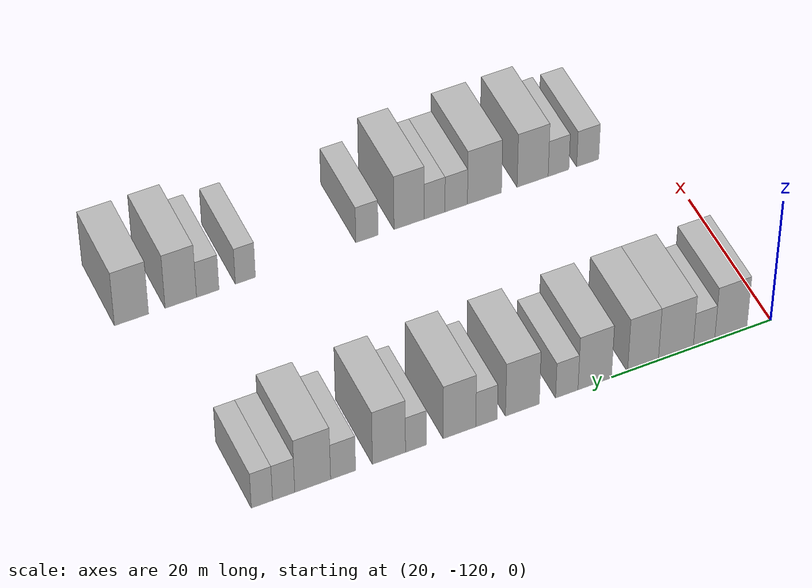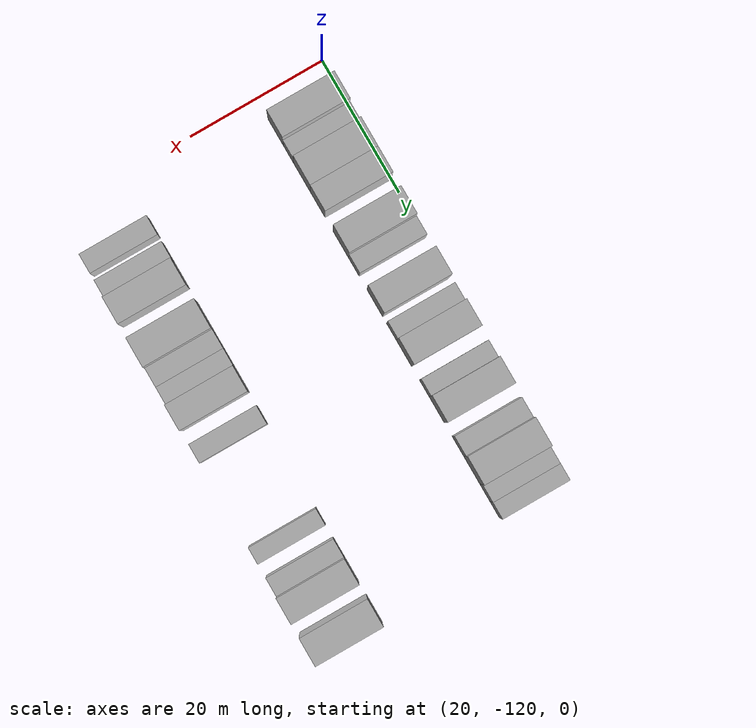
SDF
<sdf version="1.6">
 <world name="default">
  <model name="building_29">
   <static>1</static>
   <pose>25.0000 -114.8955 0 0.000000 0.000000 0.000000</pose>
   <link name="link">
    <pose>0 0 4.50 0 0 0</pose>
    <collision name="collision"><geometry><box><size>10.0000 4.0526 9.0000</size></box></geometry></collision>
    <visual name="visual">
     <cast_shadows>0</cast_shadows>
     <geometry><box><size>10.0000 4.0526 9.0000</size></box></geometry>
     <material>
      <script>
       <uri>model://HANNAS_wall/materials/scripts</uri>
       <uri>model://HANNAS_wall/materials/textures</uri>
       <name>vrc/HANNAS_wall</name>
      </script>
     </material>
    </visual>
   </link>
  </model>
  <model name="building_30">
   <static>1</static>
   <pose>25.0000 -111.5190 0 0.000000 0.000000 0.000000</pose>
   <link name="link">
    <pose>0 0 3.00 0 0 0</pose>
    <collision name="collision"><geometry><box><size>10.0000 2.7004 6.0000</size></box></geometry></collision>
    <visual name="visual">
     <cast_shadows>0</cast_shadows>
     <geometry><box><size>10.0000 2.7004 6.0000</size></box></geometry>
     <material>
      <script>
       <uri>model://HANNAS_wall/materials/scripts</uri>
       <uri>model://HANNAS_wall/materials/textures</uri>
       <name>vrc/HANNAS_wall</name>
      </script>
     </material>
    </visual>
   </link>
  </model>
  <model name="building_31">
   <static>1</static>
   <pose>25.0000 -107.9925 0 0.000000 0.000000 0.000000</pose>
   <link name="link">
    <pose>0 0 4.50 0 0 0</pose>
    <collision name="collision"><geometry><box><size>10.0000 4.3526 9.0000</size></box></geometry></collision>
    <visual name="visual">
     <cast_shadows>0</cast_shadows>
     <geometry><box><size>10.0000 4.3526 9.0000</size></box></geometry>
     <material>
      <script>
       <uri>model://HANNAS_wall/materials/scripts</uri>
       <uri>model://HANNAS_wall/materials/textures</uri>
       <name>vrc/HANNAS_wall</name>
      </script>
     </material>
    </visual>
   </link>
  </model>
  <model name="building_32">
   <static>1</static>
   <pose>25.0000 -103.9009 0 0.000000 0.000000 0.000000</pose>
   <link name="link">
    <pose>0 0 4.50 0 0 0</pose>
    <collision name="collision"><geometry><box><size>10.0000 3.8305 9.0000</size></box></geometry></collision>
    <visual name="visual">
     <cast_shadows>0</cast_shadows>
     <geometry><box><size>10.0000 3.8305 9.0000</size></box></geometry>
     <material>
      <script>
       <uri>model://HANNAS_wall/materials/scripts</uri>
       <uri>model://HANNAS_wall/materials/textures</uri>
       <name>vrc/HANNAS_wall</name>
      </script>
     </material>
    </visual>
   </link>
  </model>
  <model name="building_33">
   <static>1</static>
   <pose>25.0000 -97.9165 0 0.000000 0.000000 0.000000</pose>
   <link name="link">
    <pose>0 0 4.50 0 0 0</pose>
    <collision name="collision"><geometry><box><size>10.0000 4.1384 9.0000</size></box></geometry></collision>
    <visual name="visual">
     <cast_shadows>0</cast_shadows>
     <geometry><box><size>10.0000 4.1384 9.0000</size></box></geometry>
     <material>
      <script>
       <uri>model://HANNAS_wall/materials/scripts</uri>
       <uri>model://HANNAS_wall/materials/textures</uri>
       <name>vrc/HANNAS_wall</name>
      </script>
     </material>
    </visual>
   </link>
  </model>
  <model name="building_34">
   <static>1</static>
   <pose>25.0000 -94.4695 0 0.000000 0.000000 0.000000</pose>
   <link name="link">
    <pose>0 0 3.00 0 0 0</pose>
    <collision name="collision"><geometry><box><size>10.0000 2.7556 6.0000</size></box></geometry></collision>
    <visual name="visual">
     <cast_shadows>0</cast_shadows>
     <geometry><box><size>10.0000 2.7556 6.0000</size></box></geometry>
     <material>
      <script>
       <uri>model://HANNAS_wall/materials/scripts</uri>
       <uri>model://HANNAS_wall/materials/textures</uri>
       <name>vrc/HANNAS_wall</name>
      </script>
     </material>
    </visual>
   </link>
  </model>
  <model name="building_35">
   <static>1</static>
   <pose>25.0000 -89.0252 0 0.000000 0.000000 0.000000</pose>
   <link name="link">
    <pose>0 0 4.50 0 0 0</pose>
    <collision name="collision"><geometry><box><size>10.0000 4.1331 9.0000</size></box></geometry></collision>
    <visual name="visual">
     <cast_shadows>0</cast_shadows>
     <geometry><box><size>10.0000 4.1331 9.0000</size></box></geometry>
     <material>
      <script>
       <uri>model://HANNAS_wall/materials/scripts</uri>
       <uri>model://HANNAS_wall/materials/textures</uri>
       <name>vrc/HANNAS_wall</name>
      </script>
     </material>
    </visual>
   </link>
  </model>
  <model name="building_36">
   <static>1</static>
   <pose>25.0000 -84.6537 0 0.000000 0.000000 0.000000</pose>
   <link name="link">
    <pose>0 0 3.00 0 0 0</pose>
    <collision name="collision"><geometry><box><size>10.0000 2.6100 6.0000</size></box></geometry></collision>
    <visual name="visual">
     <cast_shadows>0</cast_shadows>
     <geometry><box><size>10.0000 2.6100 6.0000</size></box></geometry>
     <material>
      <script>
       <uri>model://HANNAS_wall/materials/scripts</uri>
       <uri>model://HANNAS_wall/materials/textures</uri>
       <name>vrc/HANNAS_wall</name>
      </script>
     </material>
    </visual>
   </link>
  </model>
  <model name="building_37">
   <static>1</static>
   <pose>25.0000 -81.3792 0 0.000000 0.000000 0.000000</pose>
   <link name="link">
    <pose>0 0 4.50 0 0 0</pose>
    <collision name="collision"><geometry><box><size>10.0000 3.9389 9.0000</size></box></geometry></collision>
    <visual name="visual">
     <cast_shadows>0</cast_shadows>
     <geometry><box><size>10.0000 3.9389 9.0000</size></box></geometry>
     <material>
      <script>
       <uri>model://HANNAS_wall/materials/scripts</uri>
       <uri>model://HANNAS_wall/materials/textures</uri>
       <name>vrc/HANNAS_wall</name>
      </script>
     </material>
    </visual>
   </link>
  </model>
  <model name="building_38">
   <static>1</static>
   <pose>25.0000 -76.1478 0 0.000000 0.000000 0.000000</pose>
   <link name="link">
    <pose>0 0 3.00 0 0 0</pose>
    <collision name="collision"><geometry><box><size>10.0000 2.5238 6.0000</size></box></geometry></collision>
    <visual name="visual">
     <cast_shadows>0</cast_shadows>
     <geometry><box><size>10.0000 2.5238 6.0000</size></box></geometry>
     <material>
      <script>
       <uri>model://HANNAS_wall/materials/scripts</uri>
       <uri>model://HANNAS_wall/materials/textures</uri>
       <name>vrc/HANNAS_wall</name>
      </script>
     </material>
    </visual>
   </link>
  </model>
  <model name="building_39">
   <static>1</static>
   <pose>25.0000 -72.9089 0 0.000000 0.000000 0.000000</pose>
   <link name="link">
    <pose>0 0 4.50 0 0 0</pose>
    <collision name="collision"><geometry><box><size>10.0000 3.9540 9.0000</size></box></geometry></collision>
    <visual name="visual">
     <cast_shadows>0</cast_shadows>
     <geometry><box><size>10.0000 3.9540 9.0000</size></box></geometry>
     <material>
      <script>
       <uri>model://HANNAS_wall/materials/scripts</uri>
       <uri>model://HANNAS_wall/materials/textures</uri>
       <name>vrc/HANNAS_wall</name>
      </script>
     </material>
    </visual>
   </link>
  </model>
  <model name="building_40">
   <static>1</static>
   <pose>25.0000 -67.4504 0 0.000000 0.000000 0.000000</pose>
   <link name="link">
    <pose>0 0 3.00 0 0 0</pose>
    <collision name="collision"><geometry><box><size>10.0000 2.9631 6.0000</size></box></geometry></collision>
    <visual name="visual">
     <cast_shadows>0</cast_shadows>
     <geometry><box><size>10.0000 2.9631 6.0000</size></box></geometry>
     <material>
      <script>
       <uri>model://HANNAS_wall/materials/scripts</uri>
       <uri>model://HANNAS_wall/materials/textures</uri>
       <name>vrc/HANNAS_wall</name>
      </script>
     </material>
    </visual>
   </link>
  </model>
  <model name="building_41">
   <static>1</static>
   <pose>25.0000 -63.8523 0 0.000000 0.000000 0.000000</pose>
   <link name="link">
    <pose>0 0 4.50 0 0 0</pose>
    <collision name="collision"><geometry><box><size>10.0000 4.2330 9.0000</size></box></geometry></collision>
    <visual name="visual">
     <cast_shadows>0</cast_shadows>
     <geometry><box><size>10.0000 4.2330 9.0000</size></box></geometry>
     <material>
      <script>
       <uri>model://HANNAS_wall/materials/scripts</uri>
       <uri>model://HANNAS_wall/materials/textures</uri>
       <name>vrc/HANNAS_wall</name>
      </script>
     </material>
    </visual>
   </link>
  </model>
  <model name="building_42">
   <static>1</static>
   <pose>25.0000 -60.4268 0 0.000000 0.000000 0.000000</pose>
   <link name="link">
    <pose>0 0 3.00 0 0 0</pose>
    <collision name="collision"><geometry><box><size>10.0000 2.6180 6.0000</size></box></geometry></collision>
    <visual name="visual">
     <cast_shadows>0</cast_shadows>
     <geometry><box><size>10.0000 2.6180 6.0000</size></box></geometry>
     <material>
      <script>
       <uri>model://HANNAS_wall/materials/scripts</uri>
       <uri>model://HANNAS_wall/materials/textures</uri>
       <name>vrc/HANNAS_wall</name>
      </script>
     </material>
    </visual>
   </link>
  </model>
  <model name="building_43">
   <static>1</static>
   <pose>25.0000 -57.8759 0 0.000000 0.000000 0.000000</pose>
   <link name="link">
    <pose>0 0 3.00 0 0 0</pose>
    <collision name="collision"><geometry><box><size>10.0000 2.4838 6.0000</size></box></geometry></collision>
    <visual name="visual">
     <cast_shadows>0</cast_shadows>
     <geometry><box><size>10.0000 2.4838 6.0000</size></box></geometry>
     <material>
      <script>
       <uri>model://HANNAS_wall/materials/scripts</uri>
       <uri>model://HANNAS_wall/materials/textures</uri>
       <name>vrc/HANNAS_wall</name>
      </script>
     </material>
    </visual>
   </link>
  </model>
  <model name="building_137">
   <static>1</static>
   <pose>55.0000 -111.8500 0 0.000000 0.000000 0.000000</pose>
   <link name="link">
    <pose>0 0 3.00 0 0 0</pose>
    <collision name="collision"><geometry><box><size>10.0000 2.8664 6.0000</size></box></geometry></collision>
    <visual name="visual">
     <cast_shadows>0</cast_shadows>
     <geometry><box><size>10.0000 2.8664 6.0000</size></box></geometry>
     <material>
      <script>
       <uri>model://HANNAS_wall/materials/scripts</uri>
       <uri>model://HANNAS_wall/materials/textures</uri>
       <name>vrc/HANNAS_wall</name>
      </script>
     </material>
    </visual>
   </link>
  </model>
  <model name="building_138">
   <static>1</static>
   <pose>55.0000 -108.0744 0 0.000000 0.000000 0.000000</pose>
   <link name="link">
    <pose>0 0 3.00 0 0 0</pose>
    <collision name="collision"><geometry><box><size>10.0000 2.6849 6.0000</size></box></geometry></collision>
    <visual name="visual">
     <cast_shadows>0</cast_shadows>
     <geometry><box><size>10.0000 2.6849 6.0000</size></box></geometry>
     <material>
      <script>
       <uri>model://HANNAS_wall/materials/scripts</uri>
       <uri>model://HANNAS_wall/materials/textures</uri>
       <name>vrc/HANNAS_wall</name>
      </script>
     </material>
    </visual>
   </link>
  </model>
  <model name="building_139">
   <static>1</static>
   <pose>55.0000 -104.7330 0 0.000000 0.000000 0.000000</pose>
   <link name="link">
    <pose>0 0 4.50 0 0 0</pose>
    <collision name="collision"><geometry><box><size>10.0000 3.9979 9.0000</size></box></geometry></collision>
    <visual name="visual">
     <cast_shadows>0</cast_shadows>
     <geometry><box><size>10.0000 3.9979 9.0000</size></box></geometry>
     <material>
      <script>
       <uri>model://HANNAS_wall/materials/scripts</uri>
       <uri>model://HANNAS_wall/materials/textures</uri>
       <name>vrc/HANNAS_wall</name>
      </script>
     </material>
    </visual>
   </link>
  </model>
  <model name="building_140">
   <static>1</static>
   <pose>55.0000 -98.5586 0 0.000000 0.000000 0.000000</pose>
   <link name="link">
    <pose>0 0 4.50 0 0 0</pose>
    <collision name="collision"><geometry><box><size>10.0000 4.3509 9.0000</size></box></geometry></collision>
    <visual name="visual">
     <cast_shadows>0</cast_shadows>
     <geometry><box><size>10.0000 4.3509 9.0000</size></box></geometry>
     <material>
      <script>
       <uri>model://HANNAS_wall/materials/scripts</uri>
       <uri>model://HANNAS_wall/materials/textures</uri>
       <name>vrc/HANNAS_wall</name>
      </script>
     </material>
    </visual>
   </link>
  </model>
  <model name="building_141">
   <static>1</static>
   <pose>55.0000 -94.9562 0 0.000000 0.000000 0.000000</pose>
   <link name="link">
    <pose>0 0 3.00 0 0 0</pose>
    <collision name="collision"><geometry><box><size>10.0000 2.8540 6.0000</size></box></geometry></collision>
    <visual name="visual">
     <cast_shadows>0</cast_shadows>
     <geometry><box><size>10.0000 2.8540 6.0000</size></box></geometry>
     <material>
      <script>
       <uri>model://HANNAS_wall/materials/scripts</uri>
       <uri>model://HANNAS_wall/materials/textures</uri>
       <name>vrc/HANNAS_wall</name>
      </script>
     </material>
    </visual>
   </link>
  </model>
  <model name="building_142">
   <static>1</static>
   <pose>55.0000 -92.2107 0 0.000000 0.000000 0.000000</pose>
   <link name="link">
    <pose>0 0 3.00 0 0 0</pose>
    <collision name="collision"><geometry><box><size>10.0000 2.6370 6.0000</size></box></geometry></collision>
    <visual name="visual">
     <cast_shadows>0</cast_shadows>
     <geometry><box><size>10.0000 2.6370 6.0000</size></box></geometry>
     <material>
      <script>
       <uri>model://HANNAS_wall/materials/scripts</uri>
       <uri>model://HANNAS_wall/materials/textures</uri>
       <name>vrc/HANNAS_wall</name>
      </script>
     </material>
    </visual>
   </link>
  </model>
  <model name="building_143">
   <static>1</static>
   <pose>55.0000 -88.9876 0 0.000000 0.000000 0.000000</pose>
   <link name="link">
    <pose>0 0 4.50 0 0 0</pose>
    <collision name="collision"><geometry><box><size>10.0000 3.8091 9.0000</size></box></geometry></collision>
    <visual name="visual">
     <cast_shadows>0</cast_shadows>
     <geometry><box><size>10.0000 3.8091 9.0000</size></box></geometry>
     <material>
      <script>
       <uri>model://HANNAS_wall/materials/scripts</uri>
       <uri>model://HANNAS_wall/materials/textures</uri>
       <name>vrc/HANNAS_wall</name>
      </script>
     </material>
    </visual>
   </link>
  </model>
  <model name="building_144">
   <static>1</static>
   <pose>55.0000 -83.6878 0 0.000000 0.000000 0.000000</pose>
   <link name="link">
    <pose>0 0 3.00 0 0 0</pose>
    <collision name="collision"><geometry><box><size>10.0000 2.7905 6.0000</size></box></geometry></collision>
    <visual name="visual">
     <cast_shadows>0</cast_shadows>
     <geometry><box><size>10.0000 2.7905 6.0000</size></box></geometry>
     <material>
      <script>
       <uri>model://HANNAS_wall/materials/scripts</uri>
       <uri>model://HANNAS_wall/materials/textures</uri>
       <name>vrc/HANNAS_wall</name>
      </script>
     </material>
    </visual>
   </link>
  </model>
  <model name="building_145">
   <static>1</static>
   <pose>55.0000 -68.5904 0 0.000000 0.000000 0.000000</pose>
   <link name="link">
    <pose>0 0 3.00 0 0 0</pose>
    <collision name="collision"><geometry><box><size>10.0000 2.4681 6.0000</size></box></geometry></collision>
    <visual name="visual">
     <cast_shadows>0</cast_shadows>
     <geometry><box><size>10.0000 2.4681 6.0000</size></box></geometry>
     <material>
      <script>
       <uri>model://HANNAS_wall/materials/scripts</uri>
       <uri>model://HANNAS_wall/materials/textures</uri>
       <name>vrc/HANNAS_wall</name>
      </script>
     </material>
    </visual>
   </link>
  </model>
  <model name="building_146">
   <static>1</static>
   <pose>55.0000 -63.9849 0 0.000000 0.000000 0.000000</pose>
   <link name="link">
    <pose>0 0 3.00 0 0 0</pose>
    <collision name="collision"><geometry><box><size>10.0000 2.7431 6.0000</size></box></geometry></collision>
    <visual name="visual">
     <cast_shadows>0</cast_shadows>
     <geometry><box><size>10.0000 2.7431 6.0000</size></box></geometry>
     <material>
      <script>
       <uri>model://HANNAS_wall/materials/scripts</uri>
       <uri>model://HANNAS_wall/materials/textures</uri>
       <name>vrc/HANNAS_wall</name>
      </script>
     </material>
    </visual>
   </link>
  </model>
  <model name="building_147">
   <static>1</static>
   <pose>55.0000 -60.6962 0 0.000000 0.000000 0.000000</pose>
   <link name="link">
    <pose>0 0 4.50 0 0 0</pose>
    <collision name="collision"><geometry><box><size>10.0000 3.8341 9.0000</size></box></geometry></collision>
    <visual name="visual">
     <cast_shadows>0</cast_shadows>
     <geometry><box><size>10.0000 3.8341 9.0000</size></box></geometry>
     <material>
      <script>
       <uri>model://HANNAS_wall/materials/scripts</uri>
       <uri>model://HANNAS_wall/materials/textures</uri>
       <name>vrc/HANNAS_wall</name>
      </script>
     </material>
    </visual>
   </link>
  </model>
  <model name="building_148">
   <static>1</static>
   <pose>55.0000 -54.7127 0 0.000000 0.000000 0.000000</pose>
   <link name="link">
    <pose>0 0 4.50 0 0 0</pose>
    <collision name="collision"><geometry><box><size>10.0000 4.1330 9.0000</size></box></geometry></collision>
    <visual name="visual">
     <cast_shadows>0</cast_shadows>
     <geometry><box><size>10.0000 4.1330 9.0000</size></box></geometry>
     <material>
      <script>
       <uri>model://HANNAS_wall/materials/scripts</uri>
       <uri>model://HANNAS_wall/materials/textures</uri>
       <name>vrc/HANNAS_wall</name>
      </script>
     </material>
    </visual>
   </link>
  </model>
 </world>
</sdf>
